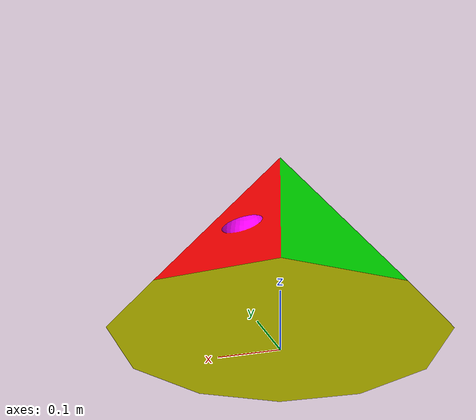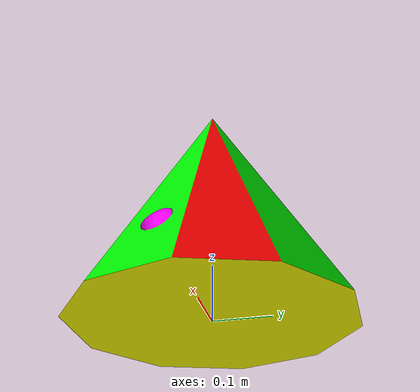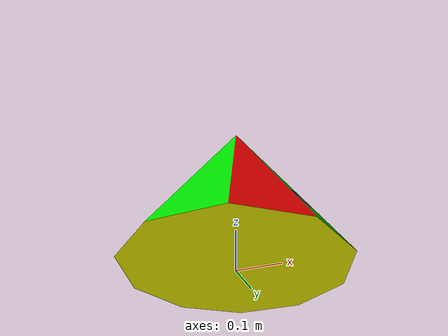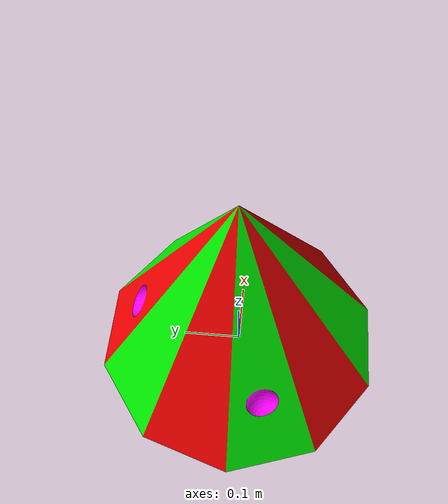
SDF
<?xml version="1.0"?>
<sdf version="1.6">
  <model name="10pyramid_with_annexe_1">
    <static>true</static>
    <pose>0 0 0 0 0 0</pose>
    <link name="link1">

      <visual name="visual1">
        <geometry>
          <mesh>
            <uri>model://10pyramid_with_annexe_1/meshes/10pyramid_with_annexe_1.DAE</uri>
   	    <scale>1 1 1</scale>
          </mesh>
        </geometry>
      </visual>

    </link>
  </model>
</sdf>
